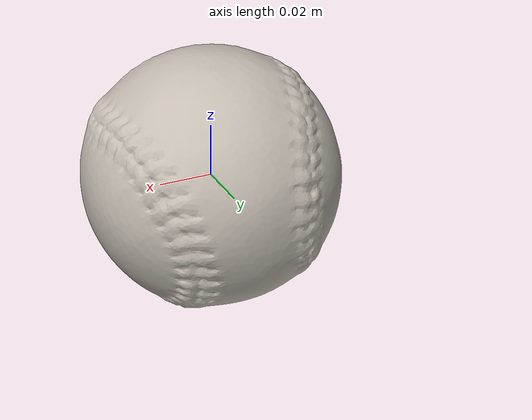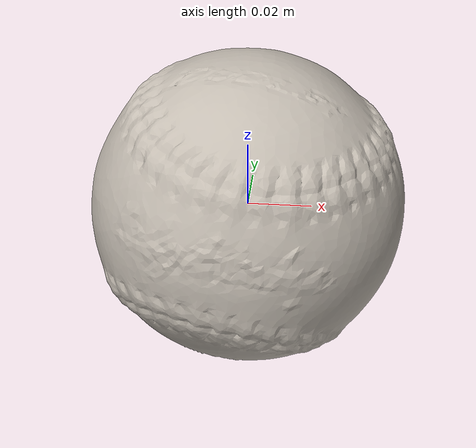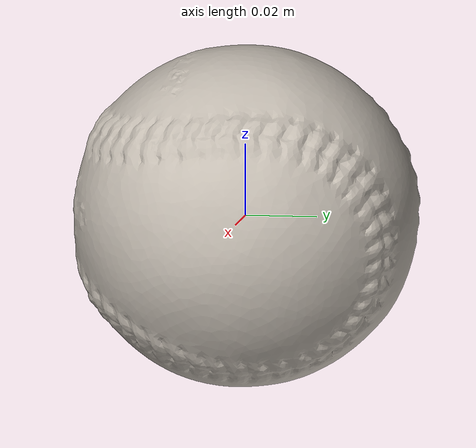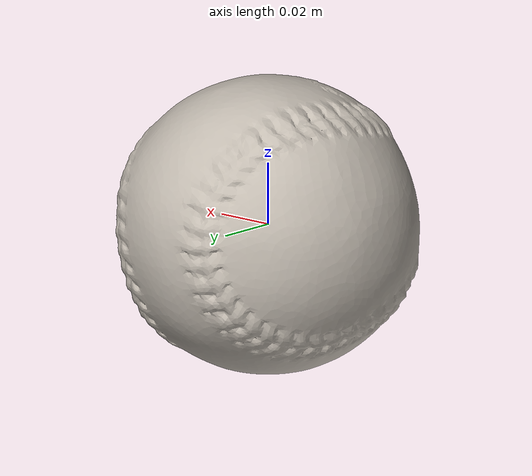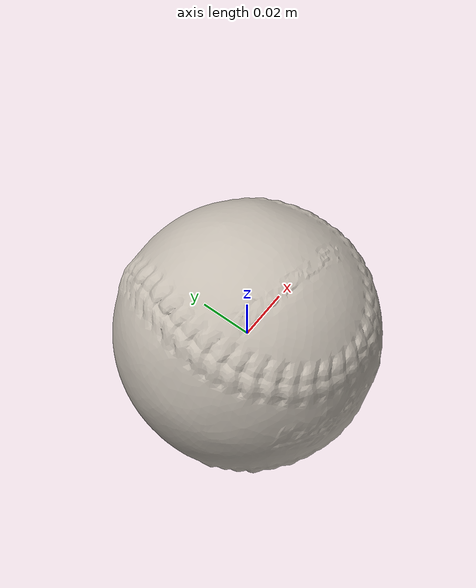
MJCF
<mujoco model="softball">
  <compiler angle="radian" />

  <asset>
    <mesh name="softball_visual_mesh" file="softball/textured.obj" />
    <mesh name="softball_collision_mesh_0" file="softball/textured_coacd_0.stl" />
    <texture name="softball_texture" type="2d" file="softball/texture_map.png" />
    <material name="softball_material" texture="softball_texture" />
  </asset>

  <worldbody>
    <body name="softball" pos="0 0 0" euler="0 0 0">
      <freejoint name="softball_joint" />
      <geom name="softball_visual_geom" type="mesh" mesh="softball_visual_mesh" material="softball_material" pos="-0.0 -0.0 0.0" euler="0 0 0" contype="0" conaffinity="0" group="0" />
      <geom name="softball_collision_geom_0" type="mesh" mesh="softball_collision_mesh_0" pos="-0.0 -0.0 0.0" euler="0 0 0" contype="1" conaffinity="1" group="3" />
      <inertial pos="0 0 0" euler="0 0 0" mass="0.191" diaginertia="0.001 0.001 0.001" />
    </body>
  </worldbody>
</mujoco>
